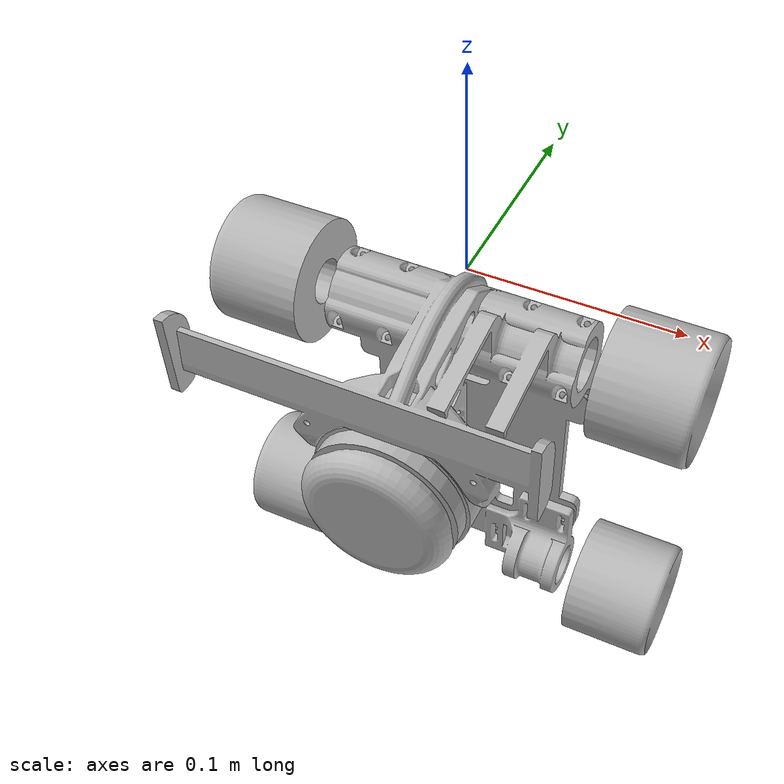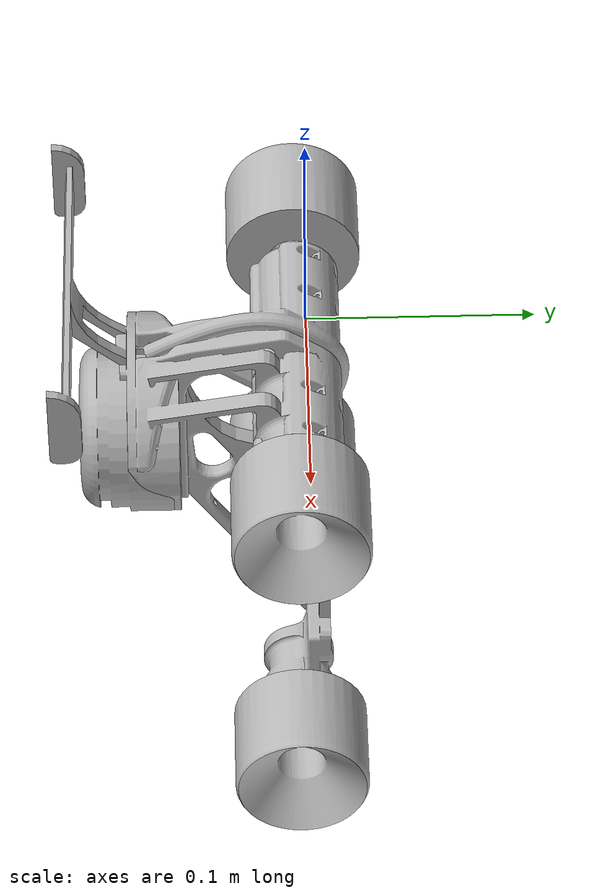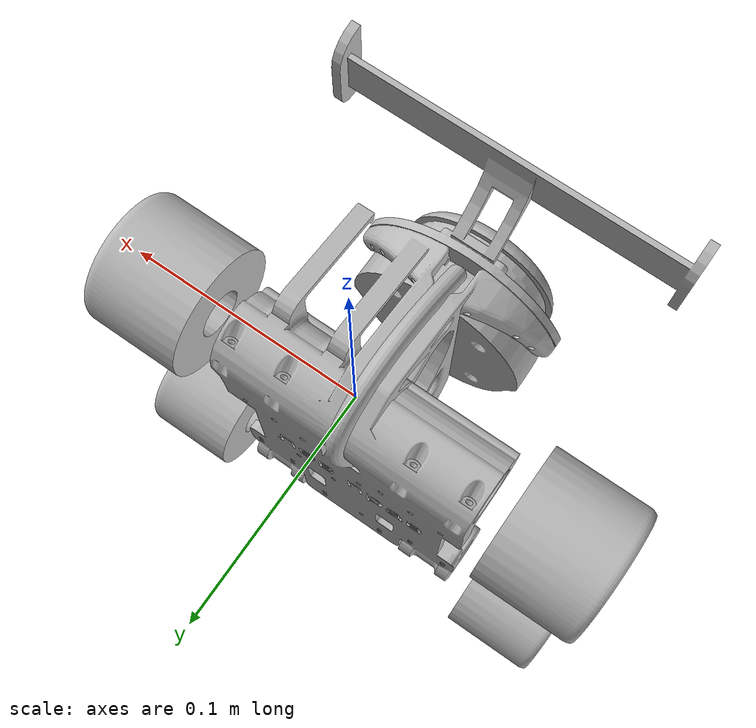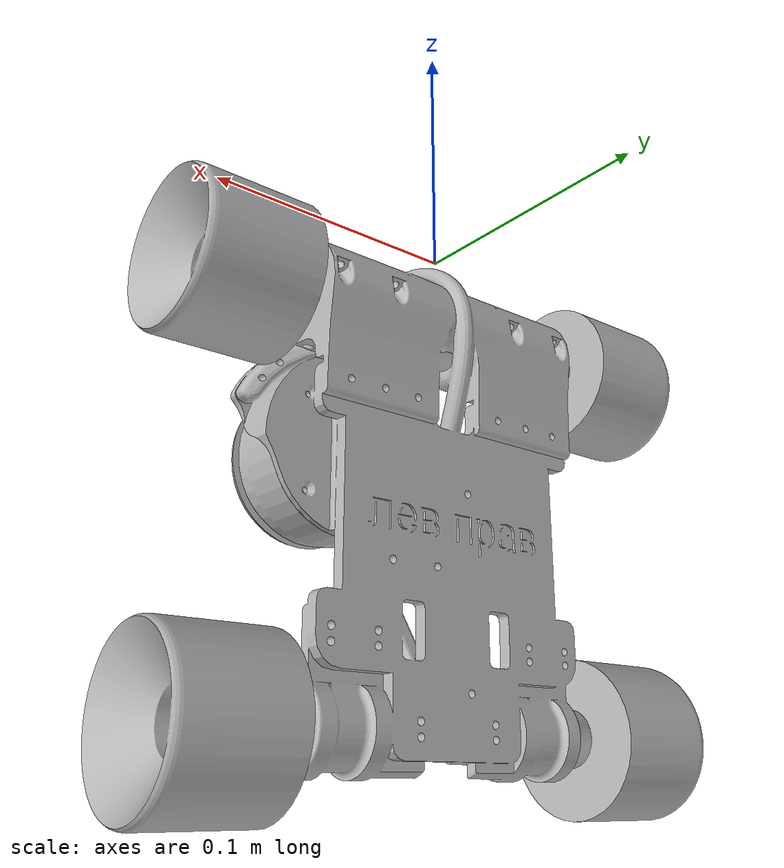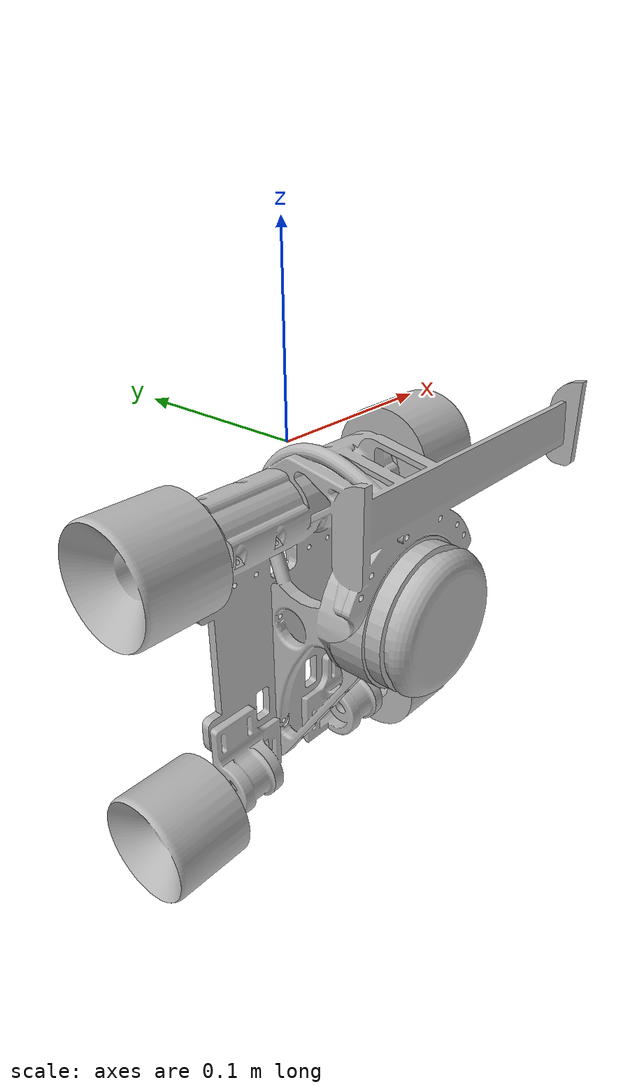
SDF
<sdf version="1.7">
  <model name="bandit">
    <link name="base_link">
      <inertial>
        <pose>0.000114 -0.017135 -0.07437 0 -0 0</pose>
        <mass>1</mass>
        <inertia>
          <ixx>0.00032834</ixx>
          <ixy>-6.6555e-07</ixy>
          <ixz>-7.1531e-06</ixz>
          <iyy>0.00044768</iyy>
          <iyz>9.9574e-06</iyz>
          <izz>0.00030403</izz>
        </inertia>
      </inertial>
      <collision name="base_link_collision">
        <pose>0 0 0 0 -0 0</pose>
        <geometry>
          <mesh>
            <scale>1 1 1</scale>
            <uri>package://bandit/meshes/visual/base_link.STL</uri>
          </mesh>
        </geometry>
      </collision>
      <visual name="base_link_visual">
        <pose>0 0 0 0 -0 0</pose>
        <geometry>
          <mesh>
            <scale>1 1 1</scale>
            <uri>package://bandit/meshes/visual/base_link.STL</uri>
          </mesh>
        </geometry>
      </visual>
    </link>
    <joint name="tofl" type="revolute">
      <pose relative_to="base_link">0.07 -0.004 -0.182 1.5708 -0 0</pose>
      <parent>base_link</parent>
      <child>wheel_fl</child>
      <axis>
        <xyz>1 0 0</xyz>
        <limit>
          <lower>-1e+16</lower>
          <upper>1e+16</upper>
        </limit>
        <dynamics>
          <spring_reference>0</spring_reference>
          <spring_stiffness>0</spring_stiffness>
        </dynamics>
      </axis>
    </joint>
    <link name="wheel_fl">
      <pose relative_to="tofl">0 0 0 0 -0 0</pose>
      <inertial>
        <pose>0.019773 0 0 0 -0 0</pose>
        <mass>0.095633</mass>
        <inertia>
          <ixx>5.1131e-05</ixx>
          <ixy>2.4719e-23</ixy>
          <ixz>5.4603e-22</ixz>
          <iyy>3.8578e-05</iyy>
          <iyz>1.6462e-38</iyz>
          <izz>3.8578e-05</izz>
        </inertia>
      </inertial>
      <collision name="wheel_fl_collision">
        <pose>0 0 0 0 -0 0</pose>
        <geometry>
          <mesh>
            <scale>1 1 1</scale>
            <uri>package://bandit/meshes/visual/wheel_fl.STL</uri>
          </mesh>
        </geometry>
      </collision>
      <visual name="wheel_fl_visual">
        <pose>0 0 0 0 -0 0</pose>
        <geometry>
          <mesh>
            <scale>1 1 1</scale>
            <uri>package://bandit/meshes/visual/wheel_fl.STL</uri>
          </mesh>
        </geometry>
      </visual>
    </link>
    <joint name="tofr" type="revolute">
      <pose relative_to="base_link">-0.07 -0.004 -0.182 -1.5708 0 -3.14159</pose>
      <parent>base_link</parent>
      <child>wheel_fr</child>
      <axis>
        <xyz>1 0 0</xyz>
        <limit>
          <lower>-1e+16</lower>
          <upper>1e+16</upper>
        </limit>
        <dynamics>
          <spring_reference>0</spring_reference>
          <spring_stiffness>0</spring_stiffness>
        </dynamics>
      </axis>
    </joint>
    <link name="wheel_fr">
      <pose relative_to="tofr">0 0 0 0 -0 0</pose>
      <inertial>
        <pose>0.019773 0 0 0 -0 0</pose>
        <mass>0.095633</mass>
        <inertia>
          <ixx>5.1131e-05</ixx>
          <ixy>2.4719e-23</ixy>
          <ixz>5.4603e-22</ixz>
          <iyy>3.8578e-05</iyy>
          <iyz>1.6462e-38</iyz>
          <izz>3.8578e-05</izz>
        </inertia>
      </inertial>
      <collision name="wheel_fr_collision">
        <pose>0 0 0 0 -0 0</pose>
        <geometry>
          <mesh>
            <scale>1 1 1</scale>
            <uri>package://bandit/meshes/visual/wheel_fr.STL</uri>
          </mesh>
        </geometry>
      </collision>
      <visual name="wheel_fr_visual">
        <pose>0 0 0 0 -0 0</pose>
        <geometry>
          <mesh>
            <scale>1 1 1</scale>
            <uri>package://bandit/meshes/visual/wheel_fr.STL</uri>
          </mesh>
        </geometry>
      </visual>
    </link>
    <joint name="tolidar" type="fixed">
      <pose relative_to="base_link">0 -0.059 -0.065 -3.14159 0 0</pose>
      <parent>base_link</parent>
      <child>lidar</child>
      <axis>
        <xyz>0 0 1</xyz>
        <limit>
          <lower>-1e+16</lower>
          <upper>1e+16</upper>
        </limit>
        <dynamics>
          <spring_reference>0</spring_reference>
          <spring_stiffness>0</spring_stiffness>
        </dynamics>
      </axis>
    </joint>
    <link name="lidar">
      <pose relative_to="tolidar">0 0 0 0 -0 0</pose>
      <inertial>
        <pose>0 0.019273 -0.000246 0 -0 0</pose>
        <mass>0.170619</mass>
        <inertia>
          <ixx>8.13816e-05</ixx>
          <ixy>4.1016e-20</ixy>
          <ixz>3.99266e-22</ixz>
          <iyy>0.000114938</iyy>
          <iyz>-6.00731e-07</iyz>
          <izz>7.968e-05</izz>
        </inertia>
      </inertial>
      <collision name="lidar_collision">
        <pose>0 0 0 0 -0 0</pose>
        <geometry>
          <mesh>
            <scale>1 1 1</scale>
            <uri>package://bandit/meshes/visual/lidar.STL</uri>
          </mesh>
        </geometry>
      </collision>
      <visual name="lidar_visual">
        <pose>0 0 0 0 -0 0</pose>
        <geometry>
          <mesh>
            <scale>1 1 1</scale>
            <uri>package://bandit/meshes/visual/lidar.STL</uri>
          </mesh>
        </geometry>
      </visual>
    </link>
    <joint name="torl" type="revolute">
      <pose relative_to="base_link">0.07 -0.004 -0.03 1.5708 -0 0</pose>
      <parent>base_link</parent>
      <child>wheel_rl</child>
      <axis>
        <xyz>1 0 0</xyz>
        <limit>
          <lower>-1e+16</lower>
          <upper>1e+16</upper>
        </limit>
        <dynamics>
          <spring_reference>0</spring_reference>
          <spring_stiffness>0</spring_stiffness>
        </dynamics>
      </axis>
    </joint>
    <link name="wheel_rl">
      <pose relative_to="torl">0 0 0 0 -0 0</pose>
      <inertial>
        <pose>0.019773 0 0 0 -0 0</pose>
        <mass>0.095633</mass>
        <inertia>
          <ixx>5.1131e-05</ixx>
          <ixy>2.4719e-23</ixy>
          <ixz>5.4603e-22</ixz>
          <iyy>3.8578e-05</iyy>
          <iyz>1.6462e-38</iyz>
          <izz>3.8578e-05</izz>
        </inertia>
      </inertial>
      <collision name="wheel_rl_collision">
        <pose>0 0 0 0 -0 0</pose>
        <geometry>
          <mesh>
            <scale>1 1 1</scale>
            <uri>package://bandit/meshes/visual/wheel_rl.STL</uri>
          </mesh>
        </geometry>
      </collision>
      <visual name="wheel_rl_visual">
        <pose>0 0 0 0 -0 0</pose>
        <geometry>
          <mesh>
            <scale>1 1 1</scale>
            <uri>package://bandit/meshes/visual/wheel_rl.STL</uri>
          </mesh>
        </geometry>
      </visual>
    </link>
    <joint name="torr" type="revolute">
      <pose relative_to="base_link">-0.07 -0.004 -0.03 -1.5708 0 -3.14159</pose>
      <parent>base_link</parent>
      <child>wheel_rr</child>
      <axis>
        <xyz>1 0 0</xyz>
        <limit>
          <lower>-1e+16</lower>
          <upper>1e+16</upper>
        </limit>
        <dynamics>
          <spring_reference>0</spring_reference>
          <spring_stiffness>0</spring_stiffness>
        </dynamics>
      </axis>
    </joint>
    <link name="wheel_rr">
      <pose relative_to="torr">0 0 0 0 -0 0</pose>
      <inertial>
        <pose>0.019773 0 0 0 -0 0</pose>
        <mass>0.095633</mass>
        <inertia>
          <ixx>5.1131e-05</ixx>
          <ixy>2.4719e-23</ixy>
          <ixz>5.4603e-22</ixz>
          <iyy>3.8578e-05</iyy>
          <iyz>1.6462e-38</iyz>
          <izz>3.8578e-05</izz>
        </inertia>
      </inertial>
      <collision name="wheel_rr_collision">
        <pose>0 0 0 0 -0 0</pose>
        <geometry>
          <mesh>
            <scale>1 1 1</scale>
            <uri>package://bandit/meshes/visual/wheel_rr.STL</uri>
          </mesh>
        </geometry>
      </collision>
      <visual name="wheel_rr_visual">
        <pose>0 0 0 0 -0 0</pose>
        <geometry>
          <mesh>
            <scale>1 1 1</scale>
            <uri>package://bandit/meshes/visual/wheel_rr.STL</uri>
          </mesh>
        </geometry>
      </visual>
    </link>
  </model>
</sdf>
